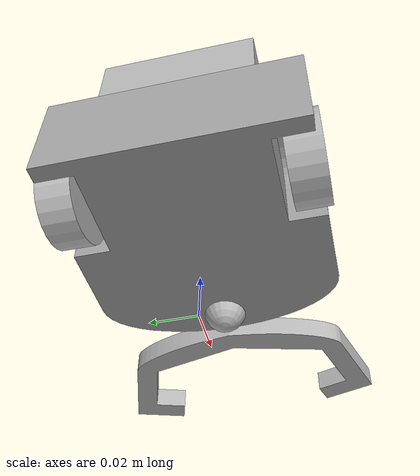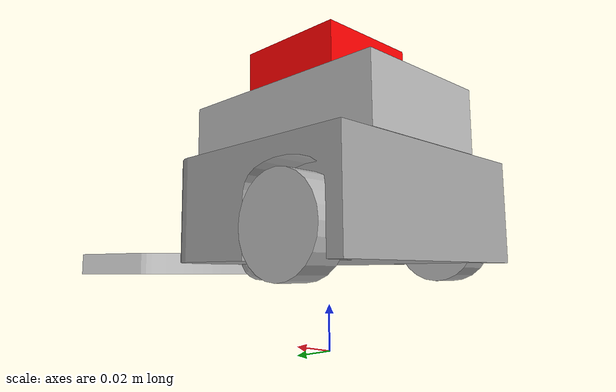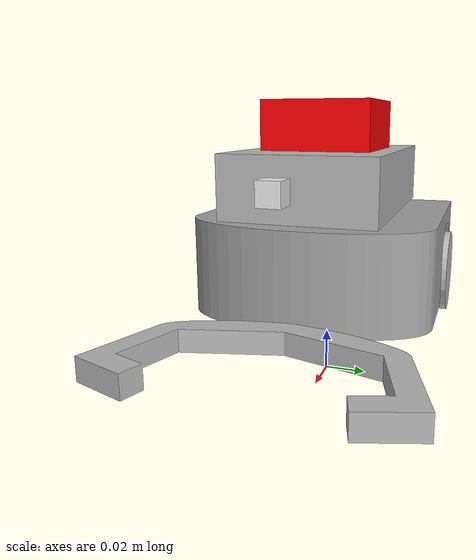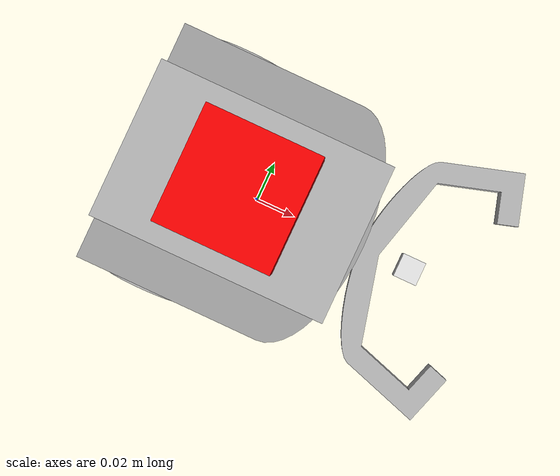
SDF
<?xml version='1.0'?>
<sdf version='1.7'>

    <model name="robot_with_camera">
        <pose>0 0 0.05 0 0 0</pose>

        <include name="camera">
            <uri>file:///home/henri/project/src/launch_gazebo/objects</uri>
            <filename>camera.sdf</filename>
            <pose>0.075 0 0.05 0 0 0</pose>
        </include>

        <include name="thymio" >
            <uri>model://thymio</uri>
            <filename>thymio.sdf</filename>
            <pose>0 0 0 0 0 0</pose>
        </include>

        <link name="robot_flag">
            <visual name="robot_flag_image">
                <pose>0 0 0.06 0 0 0</pose>
                <geometry>
                    <box>
                        <size>0.05 0.05 0.05</size>
                    </box>
                </geometry>
                <material>
                    <script>
                        <uri>file://media/materials/scripts/gazebo.material</uri>
                        <name>[MATERIAL]</name>
                    </script>
                    <ambient>1 0 0 1</ambient>
                    <diffuse>1 0 0 1</diffuse>
                    <specular>1 0 0 1</specular>
                </material>
            </visual>

            <inertial>
            <mass value="1e-5"> 1e-5</mass>
            <origin xyz="0 0 0" rpy="0 0 0"/>
            <inertia ixx="1e-6" ixy="0" ixz="0" iyy="1e-6" iyz="0" izz="1e-6" />
            </inertial>
        </link>

    </model>

</sdf>

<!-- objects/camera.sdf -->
<sdf version='1.7'>

<model name="camera" >
    <link name='camera_link'>
        <pose> 0 0 0 0 0 0 </pose>
        <visual name='visual'>
            <geometry>
                <box>
                    <size> 0.01 0.01 0.01 </size>
                </box>
            </geometry>
            <material>
              <script>
                  <uri>file://media/materials/scripts/gazebo.material</uri>
                  <name>Gazebo/White</name>
              </script>
              <ambient>1 1 1 1</ambient>
            </material>
        </visual>

        <inertial>
              <pose>0 0 0.0005 0 0 0</pose>
              <mass>0.00003</mass>
              <inertia>
                <ixx>0.0000166667</ixx>
                <ixy>0.000000</ixy>
                <ixz>0.000000</ixz>
                <iyy>0.0000166667</iyy>
                <iyz>0.000000</iyz>
                <izz>0.0000166667</izz>
              </inertia>
        </inertial>

    </link>

    <joint name='camera_joint' type='fixed'>
        <parent>camera_link</parent>
        <child>camera_optical_link</child>
        <origin xyz="0 0 0" rpy="${-pi/2} 0 ${-pi/2}"/>
    </joint>

      <link name="camera_optical_link">

        <inertial>
                <pose>0 0 0.0005 0 0 0</pose>
                <mass>0.00003</mass>
                <inertia>
                <ixx>0.0000166667</ixx>
                <ixy>0.000000</ixy>
                <ixz>0.000000</ixz>
                <iyy>0.0000166667</iyy>
                <iyz>0.000000</iyz>
                <izz>0.0000166667</izz>
              </inertia>
        </inertial>

        <sensor type="camera" name="sensor_name">
          <visualize>false</visualize>
          <!-- Set always_on only sensor, not on plugin -->
          <always_on>1</always_on>

          <!-- Set update_rate only sensor, not on plugin -->
          <update_rate>15</update_rate>

          <camera name="camera_name">
            <horizontal_fov>1.047</horizontal_fov>
            <image>
              <width>600</width>
              <height>600</height>
              <format>R8G8B8</format>
            </image>
            <clip>
            <near>0.1</near>
            </clip>
          </camera>

          <!-- Use camera, not camera_triggered -->
          <plugin name="camera_plugin" filename="libgazebo_ros_camera.so">
            <ros>
              <namespace>robots</namespace>
              <remapping>image_raw:=image_raw</remapping>
              <remapping>camera_info:=camera_info</remapping>
            </ros>

            <!-- Set camera name. If empty, defaults to sensor name (i.e. "sensor_name") -->
            <camera_name>camera</camera_name>

            <!-- Set TF frame name. If empty, defaults to link name (i.e. "link_name") -->
            <frame_name>camera_optical_link</frame_name>
            <hack_baseline>0.07</hack_baseline>

            <!-- No need to repeat distortion parameters or to set autoDistortion -->
          </plugin>
        </sensor>

      </link>
    </model>
</sdf>

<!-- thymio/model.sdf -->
<sdf version='1.4'>
  <model name="thymio">
    <pose>0 0 0 0 0 0</pose>
    <static>false</static>
    <link name='chassis'>
      <pose>0 0 .01 0 0 0</pose>
      <inertial>
        <mass>0.270</mass>
        <inertia>
          <ixx>1.272320e-04</ixx>
          <ixy>-1.138297e-06</ixy>
          <ixz>-1.762013e-21</ixz>
          <iyy>1.260759e-04</iyy>
          <iyz>-2.367320e-23</iyz>
          <izz>2.183003e-04</izz>
        </inertia>
      </inertial>
      <self_collide>True</self_collide>

      <collision name='collision'>
        <pose>0 0 0 0 0 0</pose>
        <geometry>
          <mesh>
            <uri>model://thymio/meshes/thymio.dae</uri>
          </mesh>
        </geometry>
      </collision>

      <visual name='visual'>
        <pose>0 0 0 0 0 0</pose>
        <geometry>
          <mesh>
            <uri>model://thymio/meshes/thymio.dae</uri>
          </mesh>
        </geometry>
      </visual>

      <collision name='caster_collision'>
        <pose>0.045 0 -0.02 0 0 0</pose>
          <geometry>
            <sphere>
              <radius>.01</radius>
            </sphere>
          </geometry>

          <surface>
            <friction>
              <ode>
                <mu>0</mu>
                <mu2>0</mu2>
                <slip1>1.0</slip1>
                <slip2>1.0</slip2>
              </ode>
            </friction>
          </surface>
      </collision>

      <visual name='caster_visual'>
        <pose>0.045 0 -0.02 0 0 0</pose>
          <geometry>
            <sphere>
              <radius>.01</radius>
            </sphere>
          </geometry>
      </visual>

      <collision name='gripper_collision'>
        <pose>0.045 0.085 -0.022 0 0 3.14</pose>
        <geometry>
          <mesh>
            <uri>model://thymio/meshes/gripper.dae</uri>
            <scale>0.1 0.1 0.1</scale>
          </mesh>
        </geometry>
      </collision>

      <visual name='gripper_visual'>
        <pose>0.045 0.085 -0.022 0 0 3.14</pose>
          <geometry>
            <mesh>
              <uri>model://thymio/meshes/gripper.dae</uri>
              <scale>0.1 0.1 0.1</scale>
            </mesh>
          </geometry>
      </visual>

      <collision name='reapberry_visual'>
        <pose>0 0 0.038 0 0 0</pose>
          <geometry>
            <mesh>
              <uri>model://thymio/meshes/raspberry_case.dae</uri>
              <scale>0.11 0.11 0.11</scale>
            </mesh>
          </geometry>
      </collision>

      <visual name='raspberry_visual'>
        <pose>0 0 0.038 0 0 0</pose>
          <geometry>
            <mesh>
              <uri>model://thymio/meshes/raspberry_case.dae</uri>
              <scale>0.11 0.11 0.11</scale>
            </mesh>
          </geometry>
      </visual>

    </link>

    <link name="left_wheel">

      <pose>-0.027 0.05 0 0 1.5707 1.5707</pose>
      <collision name="collision">
        <geometry>
          <cylinder>
            <radius>.02</radius>
            <length>.015</length>
          </cylinder>
        </geometry>
      </collision>

      <visual name="visual">
        <geometry>
          <cylinder>
            <radius>.02</radius>
            <length>.015</length>
          </cylinder>
        </geometry>
      </visual>

    </link>

    <link name="right_wheel">
      <pose>-0.027 -0.05 0 0 1.5707 1.5707</pose>
      <collision name="collision">
        <geometry>
          <cylinder>
            <radius>.02</radius>
            <length>.015</length>
          </cylinder>
        </geometry>
      </collision>

      <visual name="visual">
        <geometry>
          <cylinder>
            <radius>.02</radius>
            <length>.015</length>
          </cylinder>
        </geometry>
      </visual>

    </link>

    <joint type="revolute" name="left_wheel_hinge">
      <pose>0 0 -0.04 0 0 0</pose>
      <child>left_wheel</child>
      <parent>chassis</parent>
      <axis>
        <xyz>0 0 1</xyz>
        <use_parent_model_frame>0</use_parent_model_frame>
          <limit>
            <effort>3.924000e-01</effort>
            <velocity>5.235988e+00</velocity>
          </limit>
      </axis>
    </joint>

    <joint type="revolute" name="right_wheel_hinge">
      <pose>0 0 0.04 0 3.14 0</pose>
      <child>right_wheel</child>
      <parent>chassis</parent>
      <axis>
        <xyz>0 0 1</xyz>
        <use_parent_model_frame>0</use_parent_model_frame>
        <limit>
          <effort>3.924000e-01</effort>
          <velocity>5.235988e+00</velocity>
        </limit>
      </axis>
    </joint>

    <link name="laser_front_link">
      <pose>0.045 0 0 0 0 0</pose>
      <sensor name="laser_front" type="ray">
      <ray>
       <scan>
         <horizontal>
           <samples>640</samples>
           <resolution>1</resolution>
           <min_angle>-0.011111</min_angle>
           <max_angle>0.011111</max_angle>

         </horizontal>
       </scan>
       <range>
         <min>0.08</min>
         <max>10</max>
         <resolution>0.01</resolution>
       </range>
      </ray>
      <visualize>true</visualize>
      </sensor>
    </link>

    <joint name="laser_front_joint" type="fixed">
      <child>laser_front_link</child>
      <parent>chassis</parent>
    </joint>

    <link name="laser_front_right_link">
      <pose>0.045 -0.015 0 0 0 -0.2617994</pose>
      <sensor name="laser_front_right" type="ray">
      <ray>
       <scan>
         <horizontal>
           <samples>640</samples>
           <resolution>1</resolution>
           <min_angle>-0.011111</min_angle>
           <max_angle>0.011111</max_angle>

         </horizontal>
       </scan>
       <range>
         <min>0.08</min>
         <max>10</max>
         <resolution>0.01</resolution>
       </range>
      </ray>
      <visualize>true</visualize>
      </sensor>
    </link>

    <joint name="laser_front_right_joint" type="fixed">
      <child>laser_front_right_link</child>
      <parent>chassis</parent>
    </joint>

    <link name="laser_front_left_link">
      <pose>0.045 0.015 0 0 0 0.2617994</pose>
      <sensor name="laser_front_left" type="ray">
      <ray>
       <scan>
         <horizontal>
           <samples>640</samples>
           <resolution>1</resolution>
           <min_angle>-0.011111</min_angle>
           <max_angle>0.011111</max_angle>

         </horizontal>
       </scan>
       <range>
         <min>0.08</min>
         <max>10</max>
         <resolution>0.01</resolution>
       </range>
      </ray>
      <visualize>true</visualize>
      </sensor>
    </link>

    <joint name="laser_front_left_joint" type="fixed">
      <child>laser_front_left_link</child>
      <parent>chassis</parent>
    </joint>

    <link name="laser_front_right_far_link">
      <pose>0.045 -0.045 0 0 0 -0.5235988</pose>
      <sensor name="laser_front_right_far" type="ray">
      <ray>
       <scan>
         <horizontal>
           <samples>640</samples>
           <resolution>1</resolution>
           <min_angle>-0.011111</min_angle>
           <max_angle>0.011111</max_angle>

         </horizontal>
       </scan>
       <range>
         <min>0.08</min>
         <max>10</max>
         <resolution>0.01</resolution>
       </range>
      </ray>
      <visualize>true</visualize>
      </sensor>
    </link>

    <joint name="laser_front_right_far_joint" type="fixed">
      <child>laser_front_right_far_link</child>
      <parent>chassis</parent>
    </joint>

    <link name="laser_front_left_far_link">
      <pose>0.045 0.045 0 0 0 0.5235988</pose>
      <sensor name="laser_front_left_far" type="ray">
      <ray>
       <scan>
         <horizontal>
           <samples>640</samples>
           <resolution>1</resolution>
           <min_angle>-0.011111</min_angle>
           <max_angle>0.011111</max_angle>

         </horizontal>
       </scan>
       <range>
         <min>0.08</min>
         <max>10</max>
         <resolution>0.01</resolution>
       </range>
      </ray>
      <visualize>true</visualize>
      </sensor>
    </link>

    <joint name="laser_front_left_far_joint" type="fixed">
      <child>laser_front_left_far_link</child>
      <parent>chassis</parent>
    </joint>

    <link name="laser_back_right_link">
      <pose>-0.045 -0.045 0 0 0 3.14</pose>
      <sensor name="laser_back_right" type="ray">
      <ray>
       <scan>
         <horizontal>
           <samples>640</samples>
           <resolution>1</resolution>
           <min_angle>-0.011111</min_angle>
           <max_angle>0.011111</max_angle>

         </horizontal>
       </scan>
       <range>
         <min>0.08</min>
         <max>10</max>
         <resolution>0.01</resolution>
       </range>
      </ray>
      <visualize>true</visualize>
      </sensor>
    </link>

    <joint name="laser_back_right_joint" type="fixed">
      <child>laser_back_right_link</child>
      <parent>chassis</parent>
    </joint>

    <link name="laser_back_left_link">
      <pose>-0.045 0.045 0 0 0 3.14</pose>
      <sensor name="laser_back_left" type="ray">
      <ray>
       <scan>
         <horizontal>
           <samples>640</samples>
           <resolution>1</resolution>
           <min_angle>-0.011111</min_angle>
           <max_angle>0.011111</max_angle>

         </horizontal>
       </scan>
       <range>
         <min>0.08</min>
         <max>10</max>
         <resolution>0.01</resolution>
       </range>
      </ray>
      <visualize>true</visualize>
      </sensor>
    </link>

    <joint name="laser_back_left_joint" type="fixed">
      <child>laser_back_left_link</child>
      <parent>chassis</parent>
    </joint>

    <plugin name="robot_controller" filename="libRobotControlPlugin.so">
      <rv:robot_config xmlns:rv="https://github.com/ElteHupkes/revolve">
        <rv:update_rate>8.000000e+00</rv:update_rate>

        <rv:brain></rv:brain>
        <rv:motor joint="left_wheel_hinge" type="velocity" max_velocity="5.235988e+00"  min_velocity="-5.235988e+00" id="module3__rotate" part_id="module3"></rv:motor>
        <rv:motor joint="right_wheel_hinge" type="velocity" max_velocity="5.235988e+00"  min_velocity="-5.235988e+00" id="module4__rotate" part_id="module4"></rv:motor>
      </rv:robot_config>
    </plugin>

  </model>
</sdf>
